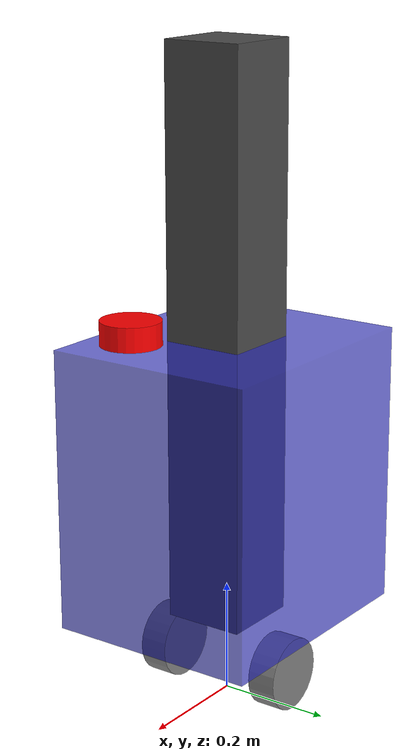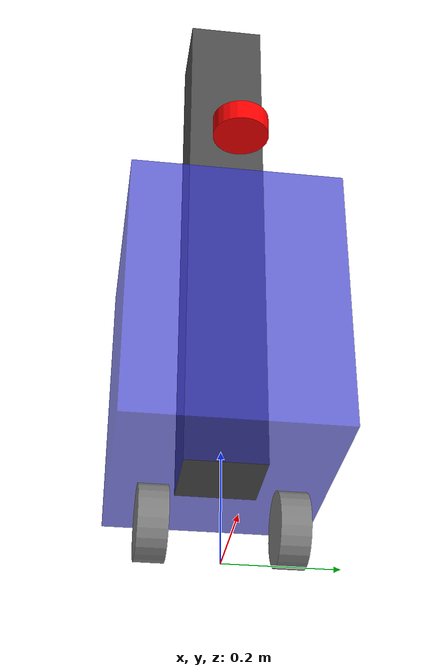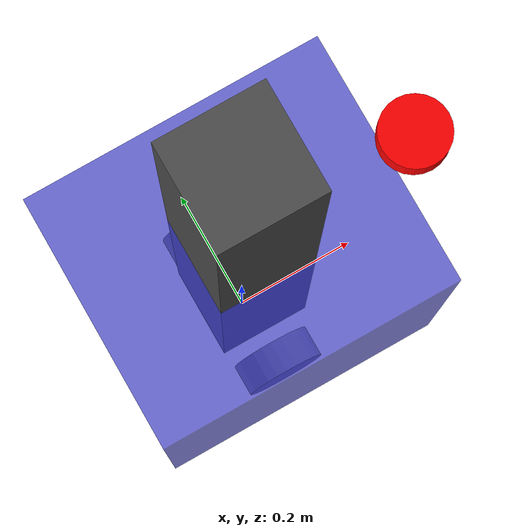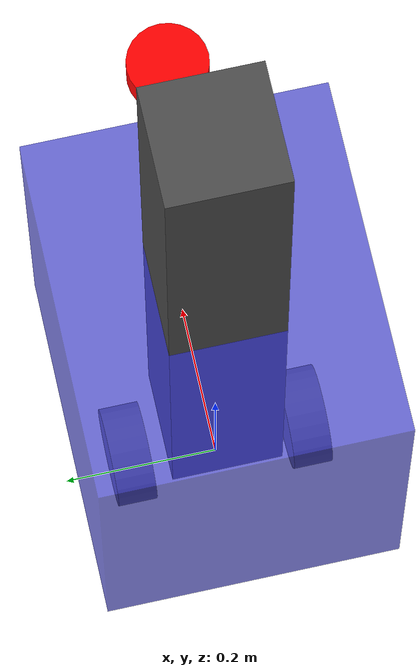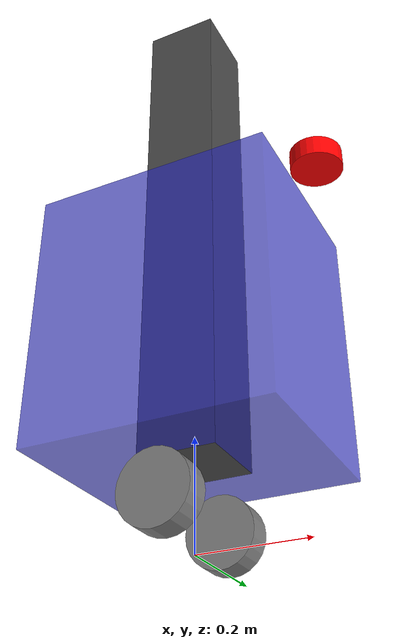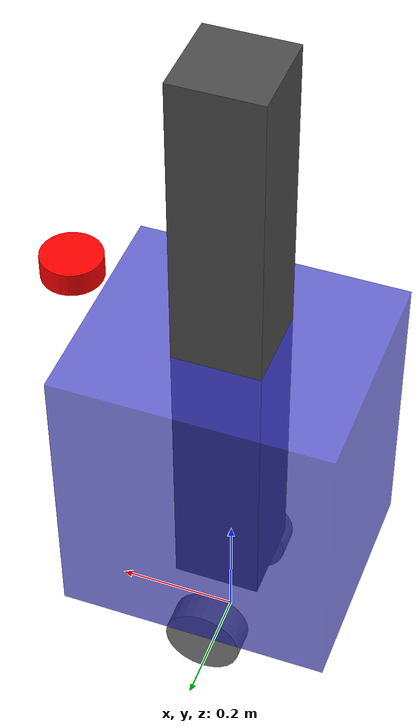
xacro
<?xml version="1.0"?>
<robot xmlns:xacro="http://www.ros.org/wiki/xacro" name="my_robot">

  <link name="base_footprint" />

<link name="base_link">
    <visual>
      <geometry>
        <box size="0.45 0.38 0.5" />
      </geometry>
      <material name="blue_material">
        <color rgba="0.2 0.2 0.8 0.7" />
      </material>
    </visual>
    <collision>
      <geometry>
        <box size="0.45 0.38 0.5" />
      </geometry>
    </collision>
    <inertial>
      <mass value="8.0" />
      <inertia ixx="0.08" ixy="0.0" ixz="0.0" iyy="0.12" iyz="0.0" izz="0.15" />
    </inertial>
  </link>

  <link name="left_wheel_link">
    <visual>
      <origin rpy="1.5707 0 0" xyz="0 0 0"/>
      <geometry>
        <cylinder length="0.051" radius="0.0645"/>
      </geometry>
      <material name="grey_material">
        <color rgba="0.5 0.5 0.5 1.0"/>
      </material>
    </visual>
    <collision>
      <origin rpy="1.5707 0 0" xyz="0 0 0"/>
      <geometry>
        <cylinder length="0.051" radius="0.0645"/>
      </geometry>
    </collision>
    <inertial>
      <mass value="1.5"/>
      <inertia ixx="0.002" ixy="0.0" ixz="0.0" iyy="0.002" iyz="0.0" izz="0.004"/>
    </inertial>
  </link>

  <link name="right_wheel_link">
    <visual>
      <origin rpy="1.5707 0 0" xyz="0 0 0"/>
      <geometry>
        <cylinder length="0.051" radius="0.0645"/>
      </geometry>
      <material name="grey_material">
        <color rgba="0.5 0.5 0.5 1.0"/>
      </material>
    </visual>
    <collision>
      <origin rpy="1.5707 0 0" xyz="0 0 0"/>
      <geometry>
        <cylinder length="0.051" radius="0.0645"/>
      </geometry>
    </collision>
    <inertial>
      <mass value="1.5"/>
      <inertia ixx="0.002" ixy="0.0" ixz="0.0" iyy="0.002" iyz="0.0" izz="0.004"/>
    </inertial>
  </link>

  <joint name="base_footprint_joint" type="fixed">
    <parent link="base_footprint"/>
    <child link="base_link"/>
    <origin xyz="0 0 0.398" rpy="0 0 0"/>  <!-- 2025-11-15更新: 底盘高50cm，中心离地39.8cm（轮心6.45cm + 底盘下沿到中心25cm） -->
  </joint>

  <!-- 新增：中心立柱结构 14.4cm×14.4cm×100cm -->
  <link name="center_pillar_link">
    <visual>
      <geometry>
        <box size="0.144 0.144 1.0" />
      </geometry>
      <material name="pillar_material">
        <color rgba="0.3 0.3 0.3 0.9" />  <!-- 深灰色 -->
      </material>
    </visual>
    <collision>
      <geometry>
        <box size="0.144 0.144 1.0" />
      </geometry>
    </collision>
    <inertial>
      <mass value="5.0" />
      <inertia ixx="0.42" ixy="0.0" ixz="0.0" iyy="0.42" iyz="0.0" izz="0.01" />
    </inertial>
  </link>

  <joint name="center_pillar_joint" type="fixed">
    <parent link="base_link"/>
    <child link="center_pillar_link"/>
    <origin xyz="0 0 0.25" rpy="0 0 0"/>  <!-- 立柱中心相对base_link向上25cm，使立柱底面与底盘底面重合 -->
  </joint>

  <joint name="left_wheel_joint" type="continuous">
    <parent link="base_link"/>
    <child link="left_wheel_link"/>
    <origin rpy="0 0 0" xyz="0 0.11682 -0.3335"/>  <!-- 2025-11-15更新: 轮距23.364cm/2=11.682cm, 底盘高50cm后轮心相对base_link为-33.35cm -->
    <axis xyz="0 1 0"/>
  </joint>

  <joint name="right_wheel_joint" type="continuous">
    <parent link="base_link"/>
    <child link="right_wheel_link"/>
    <origin rpy="0 0 0" xyz="0 -0.11682 -0.3335"/>  <!-- 2025-11-15更新: 轮距23.364cm/2=11.682cm, 底盘高50cm后轮心相对base_link为-33.35cm -->
    <axis xyz="0 1 0"/>
  </joint>

  <link name="laser_link">
    <visual>
      <geometry>
        <cylinder radius="0.05" length="0.04"/>
      </geometry>
      <material name="red">
        <color rgba="1.0 0.0 0.0 1.0" />
      </material>
    </visual>
    <collision>
      <geometry>
        <cylinder radius="0.05" length="0.04"/>
      </geometry>
    </collision>
    <inertial>
      <mass value="0.1"/>
      <inertia ixx="0.001" ixy="0" ixz="0" iyy="0.001" iyz="0" izz="0.001"/>
    </inertial>
  </link>

  <joint name="laser_joint" type="fixed">
    <parent link="base_link"/>
    <child link="laser_link"/>
    <origin xyz="0.258 0 0.318" rpy="0 0 0"/>  <!-- 2025-11-15更新: 底盘高50cm，雷达底部仍离地69.6cm，雷达中心相对base_link为31.8cm -->
  </joint>

</robot>
